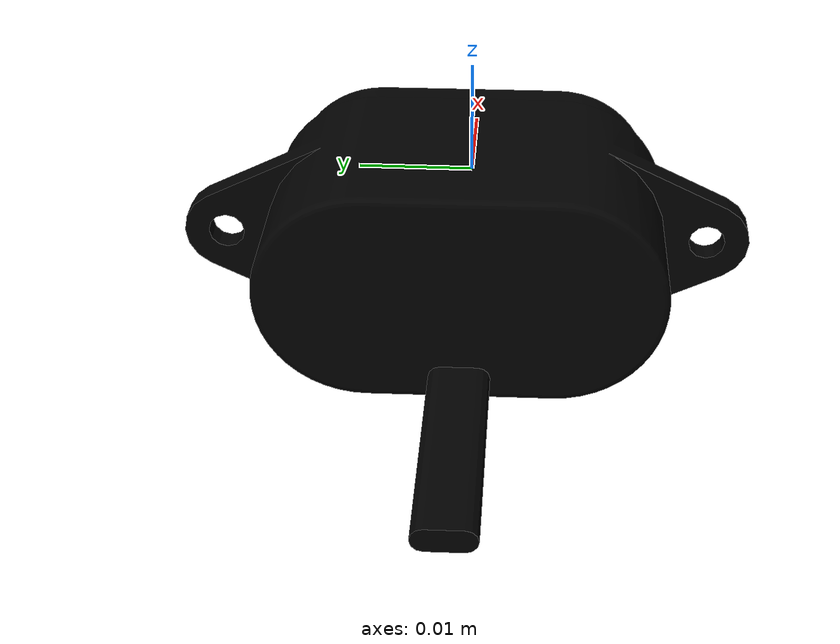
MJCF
<mujoco model="ultrasonic">
  <default>
    <default class="visual">
      <geom group="2" type="mesh" contype="0" conaffinity="0"/>
    </default>
    <default class="collision">
      <geom group="3" type="mesh"/>
    </default>
  </default>
  <asset>
    <material name="material_0" specular="0.4000000000000001" shininess="0.001" rgba="0.00000000 0.00000000 0.00000000 1.0"/>
    <mesh file="ultrasonic.obj"/>
  </asset>
  <worldbody>
    <body name="ultrasonic">
      <geom material="material_0" mesh="ultrasonic" class="visual"/>
    </body>
  </worldbody>
</mujoco>
